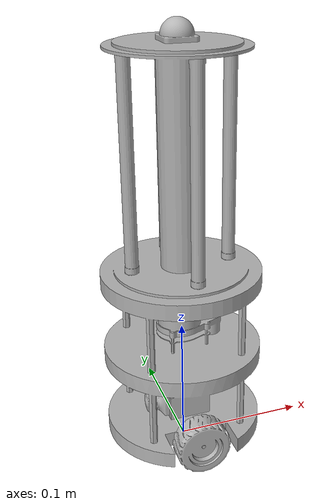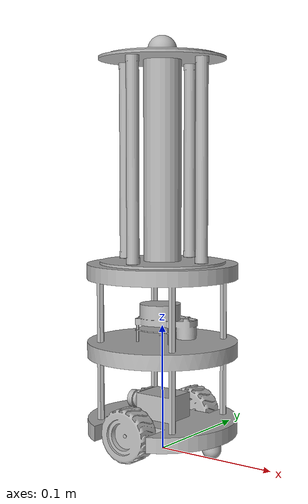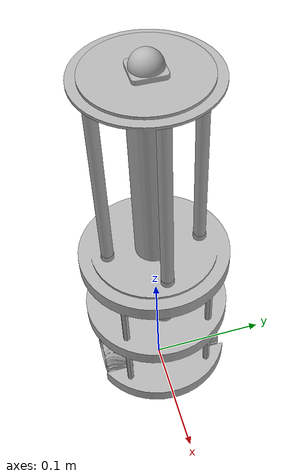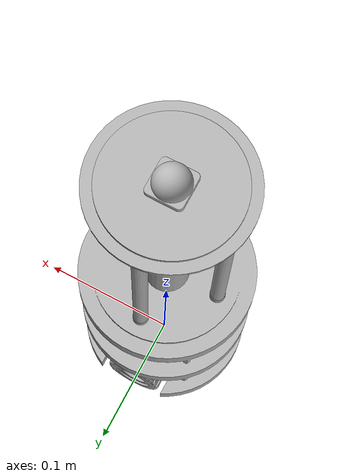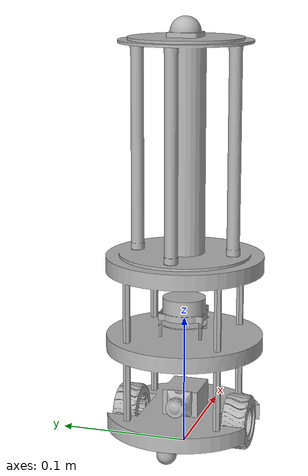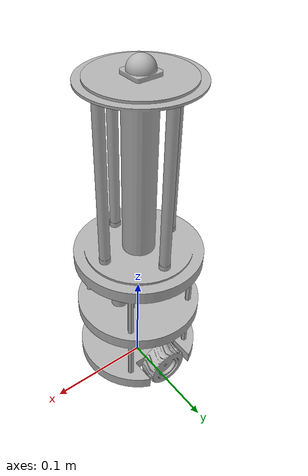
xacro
<?xml version="1.0" ?>
<robot name="jr_final_robot" xmlns:xacro="http://www.ros.org/wiki/xacro">

<xacro:include filename="$(find jr_final_robot_description)/urdf/materials.xacro" />
<xacro:include filename="$(find jr_final_robot_description)/urdf/jr_final_robot.trans" />
<xacro:include filename="$(find jr_final_robot_description)/urdf/jr_final_robot.gazebo" />
<link name="base_link">
  <inertial>
    <origin rpy="0 0 0" xyz="4.2796380229419214e-05 -2.944027739163392e-05 0.1230532923929818"/>
    <mass value="4.246440309681808"/>
    <inertia ixx="0.030754" ixy="0.0" ixz="1.6e-05" iyy="0.031238" iyz="-1.1e-05" izz="0.005746"/>
  </inertial>
  <visual>
    <origin rpy="0 0 0" xyz="0 0 0"/>
    <geometry>
      <mesh filename="package://jr_final_robot_description/meshes/base_link.stl" scale="0.001 0.001 0.001"/>
    </geometry>
    <material name="silver"/>
  </visual>
  <collision>
    <origin rpy="0 0 0" xyz="0 0 0"/>
    <geometry>
      <mesh filename="package://jr_final_robot_description/meshes/base_link.stl" scale="0.001 0.001 0.001"/>
    </geometry>
  </collision>
</link>

<link name="CW2_1">
  <inertial>
    <origin rpy="0 0 0" xyz="0.023079652489143062 -0.05471366901912194 -0.005886512749468751"/>
    <mass value="0.01595290932015856"/>
    <inertia ixx="0.0" ixy="0.0" ixz="0.0" iyy="0.0" iyz="-0.0" izz="0.0"/>
  </inertial>
  <visual>
    <origin rpy="0 0 0" xyz="-0.02442 -0.054757 -0.014001"/>
    <geometry>
      <mesh filename="package://jr_final_robot_description/meshes/CW2_1.stl" scale="0.001 0.001 0.001"/>
    </geometry>
    <material name="silver"/>
  </visual>
  <collision>
    <origin rpy="0 0 0" xyz="-0.02442 -0.054757 -0.014001"/>
    <geometry>
      <mesh filename="package://jr_final_robot_description/meshes/CW2_1.stl" scale="0.001 0.001 0.001"/>
    </geometry>
  </collision>
</link>

<link name="CW1_1">
  <inertial>
    <origin rpy="0 0 0" xyz="-0.07192034751085692 -0.05471366901913618 -0.005886512749468751"/>
    <mass value="0.01595290932015856"/>
    <inertia ixx="0.0" ixy="-0.0" ixz="-0.0" iyy="0.0" iyz="0.0" izz="0.0"/>
  </inertial>
  <visual>
    <origin rpy="0 0 0" xyz="-0.02442 -0.054757 -0.014001"/>
    <geometry>
      <mesh filename="package://jr_final_robot_description/meshes/CW1_1.stl" scale="0.001 0.001 0.001"/>
    </geometry>
    <material name="silver"/>
  </visual>
  <collision>
    <origin rpy="0 0 0" xyz="-0.02442 -0.054757 -0.014001"/>
    <geometry>
      <mesh filename="package://jr_final_robot_description/meshes/CW1_1.stl" scale="0.001 0.001 0.001"/>
    </geometry>
  </collision>
</link>

<link name="Lidar_1">
  <inertial>
    <origin rpy="0 0 0" xyz="-0.033866912602736346 -0.03783644397945601 0.018849927927141533"/>
    <mass value="0.14394520677893116"/>
    <inertia ixx="1.5e-05" ixy="-0.0" ixz="5e-06" iyy="2.7e-05" iyz="0.0" izz="3.1e-05"/>
  </inertial>
  <visual>
    <origin rpy="0 0 0" xyz="-0.035863 -0.037714 -0.088001"/>
    <geometry>
      <mesh filename="package://jr_final_robot_description/meshes/Lidar_1.stl" scale="0.001 0.001 0.001"/>
    </geometry>
    <material name="silver"/>
  </visual>
  <collision>
    <origin rpy="0 0 0" xyz="-0.035863 -0.037714 -0.088001"/>
    <geometry>
      <mesh filename="package://jr_final_robot_description/meshes/Lidar_1.stl" scale="0.001 0.001 0.001"/>
    </geometry>
  </collision>
</link>

<link name="L1_1">
  <inertial>
    <origin rpy="0 0 0" xyz="-0.037375347510832026 -2.2959229185381957e-07 -0.08032464318424948"/>
    <mass value="0.093551294700314"/>
    <inertia ixx="0.000198" ixy="-0.0" ixz="0.0" iyy="0.000198" iyz="-0.0" izz="1e-06"/>
  </inertial>
  <visual>
    <origin rpy="0 0 0" xyz="0.0 0.0 -0.311"/>
    <geometry>
      <mesh filename="package://jr_final_robot_description/meshes/L1_1.stl" scale="0.001 0.001 0.001"/>
    </geometry>
    <material name="silver"/>
  </visual>
  <collision>
    <origin rpy="0 0 0" xyz="0.0 0.0 -0.311"/>
    <geometry>
      <mesh filename="package://jr_final_robot_description/meshes/L1_1.stl" scale="0.001 0.001 0.001"/>
    </geometry>
  </collision>
</link>

<link name="L2_1">
  <inertial>
    <origin rpy="0 0 0" xyz="0.03737465248911375 -2.2959229245646252e-07 -0.08032464318425164"/>
    <mass value="0.09355129470031384"/>
    <inertia ixx="0.000198" ixy="-0.0" ixz="0.0" iyy="0.000198" iyz="-0.0" izz="1e-06"/>
  </inertial>
  <visual>
    <origin rpy="0 0 0" xyz="0.0 0.0 -0.311"/>
    <geometry>
      <mesh filename="package://jr_final_robot_description/meshes/L2_1.stl" scale="0.001 0.001 0.001"/>
    </geometry>
    <material name="silver"/>
  </visual>
  <collision>
    <origin rpy="0 0 0" xyz="0.0 0.0 -0.311"/>
    <geometry>
      <mesh filename="package://jr_final_robot_description/meshes/L2_1.stl" scale="0.001 0.001 0.001"/>
    </geometry>
  </collision>
</link>

<link name="L3_1">
  <inertial>
    <origin rpy="0 0 0" xyz="-3.47510850648991e-07 -0.03737522959227395 -0.0803246431842464"/>
    <mass value="0.093551294700314"/>
    <inertia ixx="0.000198" ixy="0.0" ixz="0.0" iyy="0.000198" iyz="-0.0" izz="1e-06"/>
  </inertial>
  <visual>
    <origin rpy="0 0 0" xyz="0.0 0.0 -0.311"/>
    <geometry>
      <mesh filename="package://jr_final_robot_description/meshes/L3_1.stl" scale="0.001 0.001 0.001"/>
    </geometry>
    <material name="silver"/>
  </visual>
  <collision>
    <origin rpy="0 0 0" xyz="0.0 0.0 -0.311"/>
    <geometry>
      <mesh filename="package://jr_final_robot_description/meshes/L3_1.stl" scale="0.001 0.001 0.001"/>
    </geometry>
  </collision>
</link>

<link name="L4_1">
  <inertial>
    <origin rpy="0 0 0" xyz="-3.475108499206847e-07 0.03737477040772681 -0.08032464318425606"/>
    <mass value="0.09355129470031462"/>
    <inertia ixx="0.000198" ixy="-0.0" ixz="0.0" iyy="0.000198" iyz="0.0" izz="1e-06"/>
  </inertial>
  <visual>
    <origin rpy="0 0 0" xyz="0.0 0.0 -0.311"/>
    <geometry>
      <mesh filename="package://jr_final_robot_description/meshes/L4_1.stl" scale="0.001 0.001 0.001"/>
    </geometry>
    <material name="silver"/>
  </visual>
  <collision>
    <origin rpy="0 0 0" xyz="0.0 0.0 -0.311"/>
    <geometry>
      <mesh filename="package://jr_final_robot_description/meshes/L4_1.stl" scale="0.001 0.001 0.001"/>
    </geometry>
  </collision>
</link>

<link name="Top_plate_1">
  <inertial>
    <origin rpy="0 0 0" xyz="0.0005796524891431269 -0.03771422959228623 0.0009993568157066757"/>
    <mass value="0.09119823561885385"/>
    <inertia ixx="4.2e-05" ixy="0.0" ixz="-0.0" iyy="4.2e-05" iyz="0.0" izz="8.4e-05"/>
  </inertial>
  <visual>
    <origin rpy="0 0 0" xyz="0.00058 -0.037714 -0.311001"/>
    <geometry>
      <mesh filename="package://jr_final_robot_description/meshes/Top_plate_1.stl" scale="0.001 0.001 0.001"/>
    </geometry>
    <material name="silver"/>
  </visual>
  <collision>
    <origin rpy="0 0 0" xyz="0.00058 -0.037714 -0.311001"/>
    <geometry>
      <mesh filename="package://jr_final_robot_description/meshes/Top_plate_1.stl" scale="0.001 0.001 0.001"/>
    </geometry>
  </collision>
</link>

<link name="PIR_1">
  <inertial>
    <origin rpy="0 0 0" xyz="-0.0004970426568133294 0.0002397704077140726 0.006089010209649248"/>
    <mass value="0.011594460600184004"/>
    <inertia ixx="1e-06" ixy="-0.0" ixz="-0.0" iyy="1e-06" iyz="0.0" izz="1e-06"/>
  </inertial>
  <visual>
    <origin rpy="0 0 0" xyz="0.0 0.0 -0.313"/>
    <geometry>
      <mesh filename="package://jr_final_robot_description/meshes/PIR_1.stl" scale="0.001 0.001 0.001"/>
    </geometry>
    <material name="silver"/>
  </visual>
  <collision>
    <origin rpy="0 0 0" xyz="0.0 0.0 -0.313"/>
    <geometry>
      <mesh filename="package://jr_final_robot_description/meshes/PIR_1.stl" scale="0.001 0.001 0.001"/>
    </geometry>
  </collision>
</link>

<link name="Camera__1">
  <inertial>
    <origin rpy="0 0 0" xyz="-0.005378430853760528 -0.0002142023319921234 0.0009993526861105315"/>
    <mass value="0.022908274960213946"/>
    <inertia ixx="1e-06" ixy="0.0" ixz="-0.0" iyy="1e-06" iyz="0.0" izz="1e-06"/>
  </inertial>
  <visual>
    <origin rpy="0 0 0" xyz="0.01549 0.000669 -0.036001"/>
    <geometry>
      <mesh filename="package://jr_final_robot_description/meshes/Camera__1.stl" scale="0.001 0.001 0.001"/>
    </geometry>
    <material name="silver"/>
  </visual>
  <collision>
    <origin rpy="0 0 0" xyz="0.01549 0.000669 -0.036001"/>
    <geometry>
      <mesh filename="package://jr_final_robot_description/meshes/Camera__1.stl" scale="0.001 0.001 0.001"/>
    </geometry>
  </collision>
</link>

<link name="Wheel_L_1">
  <inertial>
    <origin rpy="0 0 0" xyz="0.0005796511577487066 -0.004709299745277888 -3.436688253873055e-07"/>
    <mass value="0.13328483894539417"/>
    <inertia ixx="2.1e-05" ixy="0.0" ixz="-0.0" iyy="3.4e-05" iyz="0.0" izz="2.1e-05"/>
  </inertial>
  <visual>
    <origin rpy="0 0 0" xyz="0.00058 -0.048114 -0.021018"/>
    <geometry>
      <mesh filename="package://jr_final_robot_description/meshes/Wheel_L_1.stl" scale="0.001 0.001 0.001"/>
    </geometry>
    <material name="silver"/>
  </visual>
  <collision>
    <origin rpy="0 0 0" xyz="0.00058 -0.048114 -0.021018"/>
    <geometry>
      <mesh filename="package://jr_final_robot_description/meshes/Wheel_L_1.stl" scale="0.001 0.001 0.001"/>
    </geometry>
  </collision>
</link>

<link name="Wheel_R_1">
  <inertial>
    <origin rpy="0 0 0" xyz="0.0005796538662169424 0.004280840378584727 -3.436038342151393e-07"/>
    <mass value="0.13328484508120644"/>
    <inertia ixx="2.1e-05" ixy="0.0" ixz="0.0" iyy="3.4e-05" iyz="-0.0" izz="2.1e-05"/>
  </inertial>
  <visual>
    <origin rpy="0 0 0" xyz="0.00058 0.048186 -0.021018"/>
    <geometry>
      <mesh filename="package://jr_final_robot_description/meshes/Wheel_R_1.stl" scale="0.001 0.001 0.001"/>
    </geometry>
    <material name="silver"/>
  </visual>
  <collision>
    <origin rpy="0 0 0" xyz="0.00058 0.048186 -0.021018"/>
    <geometry>
      <mesh filename="package://jr_final_robot_description/meshes/Wheel_R_1.stl" scale="0.001 0.001 0.001"/>
    </geometry>
  </collision>
</link>

<joint name="CW1" type="fixed">
  <origin rpy="0 0 0" xyz="0.02442 0.054757 0.014001"/>
  <parent link="base_link"/>
  <child link="CW2_1"/>
</joint>

<joint name="CW2" type="fixed">
  <origin rpy="0 0 0" xyz="0.02442 0.054757 0.014001"/>
  <parent link="base_link"/>
  <child link="CW1_1"/>
</joint>

<joint name="Lidar" type="fixed">
  <origin rpy="0 0 0" xyz="0.035863 0.037714 0.088001"/>
  <parent link="base_link"/>
  <child link="Lidar_1"/>
</joint>

<joint name="Rigid7" type="fixed">
  <origin rpy="0 0 0" xyz="0.00058 -0.037714 -1e-06"/>
  <parent link="Top_plate_1"/>
  <child link="L1_1"/>
</joint>

<joint name="Rigid8" type="fixed">
  <origin rpy="0 0 0" xyz="0.00058 -0.037714 -1e-06"/>
  <parent link="Top_plate_1"/>
  <child link="L2_1"/>
</joint>

<joint name="Rigid9" type="fixed">
  <origin rpy="0 0 0" xyz="0.00058 -0.037714 -1e-06"/>
  <parent link="Top_plate_1"/>
  <child link="L3_1"/>
</joint>

<joint name="Rigid10" type="fixed">
  <origin rpy="0 0 0" xyz="0.00058 -0.037714 -1e-06"/>
  <parent link="Top_plate_1"/>
  <child link="L4_1"/>
</joint>

<joint name="TP and BL" type="fixed">
  <origin rpy="0 0 0" xyz="-0.00058 0.037714 0.311001"/>
  <parent link="base_link"/>
  <child link="Top_plate_1"/>
</joint>

<joint name="PIR" type="fixed">
  <origin rpy="0 0 0" xyz="0.00058 -0.037714 0.001999"/>
  <parent link="Top_plate_1"/>
  <child link="PIR_1"/>
</joint>

<joint name="camera_joint" type="fixed">
  <origin rpy="0 0 0" xyz="-0.01549 -0.000669 0.036001"/>
  <parent link="base_link"/>
  <child link="Camera__1"/>
</joint>

<joint name="Rev17" type="continuous">
  <origin rpy="0 0 0" xyz="-0.00058 0.048114 0.021018"/>
  <parent link="base_link"/>
  <child link="Wheel_L_1"/>
  <axis xyz="0.0 1.0 -0.0"/>
</joint>

<joint name="Rev18" type="continuous">
  <origin rpy="0 0 0" xyz="-0.00058 -0.048186 0.021018"/>
  <parent link="base_link"/>
  <child link="Wheel_R_1"/>
  <axis xyz="0.0 1.0 0.0"/>
</joint>

</robot>

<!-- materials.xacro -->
<robot name="jr_final_robot" xmlns:xacro="http://www.ros.org/wiki/xacro" >

<material name="silver">
  <color rgba="0.700 0.700 0.700 1.000"/>
</material>

</robot>

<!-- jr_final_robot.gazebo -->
<robot name="jr_final_robot" xmlns:xacro="http://www.ros.org/wiki/xacro" >

<xacro:property name="body_color" value="Gazebo/Silver" />

<gazebo>
  <plugin filename="libgazebo_ros_control.so" name="control"/>
</gazebo>

<gazebo reference="Lidar_1">
    <sensor type="ray" name="head_hokuyo_sensor">
      <pose>0 0 0 0 0 0</pose>
      <visualize>false</visualize>
      <update_rate>40</update_rate>
      <ray>
        <scan>
          <horizontal>
            <samples>720</samples>
            <resolution>1</resolution>
            <min_angle>-1.570796</min_angle>
            <max_angle>1.570796</max_angle>
          </horizontal>
        </scan>
        <range>
          <min>0.10</min>
          <max>30.0</max>
          <resolution>0.01</resolution>
        </range>
        <noise>
          <type>gaussian</type>
          <mean>0.0</mean>
          <stddev>0.01</stddev>
        </noise>
      </ray>
      <plugin name="gazebo_ros_head_hokuyo_controller" filename="libgazebo_ros_laser.so">
        <topicName>/scan</topicName>
        <frameName>Lidar_1</frameName>
      </plugin>
    </sensor>
  </gazebo>

  <gazebo>
  <plugin name="differential_drive_controller" filename="libgazebo_ros_diff_drive.so">

    <!-- Plugin update rate in Hz -->
    <updateRate>10</updateRate>

    <!-- Name of left joint, defaults to `left_joint` -->
    <leftJoint>Rev17</leftJoint>

    <!-- Name of right joint, defaults to `right_joint` -->
    <rightJoint>Rev18</rightJoint>

    <!-- Wheel acceleration, in rad/s^2, defaults to 0.0 rad/s^2 -->
    <wheelAcceleration>1.0</wheelAcceleration>

    <!-- Maximum torque which the wheels can produce, in Nm, defaults to 5 Nm -->
    <wheelTorque>20</wheelTorque>

    <!-- Topic to receive geometry_msgs/Twist message commands, defaults to `cmd_vel` -->
    <commandTopic>cmd_vel</commandTopic>

    <!-- Topic to publish nav_msgs/Odometry messages, defaults to `odom` -->
    <odometryTopic>odom</odometryTopic>

    <!-- Odometry frame, defaults to `odom` -->
    <odometryFrame>odom</odometryFrame>

    <!-- Robot frame to calculate odometry from, defaults to `base_footprint` -->
    <robotBaseFrame>base_link</robotBaseFrame>

    <!-- Odometry source, 0 for ENCODER, 1 for WORLD, defaults to WORLD -->
    <odometrySource>1</odometrySource>

    <!-- Set to true to publish transforms for the wheel links, defaults to false -->
    <publishWheelTF>true</publishWheelTF>

    <!-- Set to true to publish transforms for the odometry, defaults to true -->
    <publishOdom>true</publishOdom>

    <!-- Set to true to publish sensor_msgs/JointState on /joint_states for the wheel joints, defaults to false -->
    <publishWheelJointState>true</publishWheelJointState>

    <!-- Set to true to swap right and left wheels, defaults to true -->
    <legacyMode>false</legacyMode>
  </plugin>
</gazebo>

<gazebo reference="base_link">
  <material>${body_color}</material>
  <mu1>0.2</mu1>
  <mu2>0.2</mu2>
  <selfCollide>true</selfCollide>
  <gravity>true</gravity>
</gazebo>

<gazebo reference="CW2_1">
  <material>${body_color}</material>
  <mu1>0.2</mu1>
  <mu2>0.2</mu2>
  <selfCollide>true</selfCollide>
</gazebo>

<gazebo reference="CW1_1">
  <material>${body_color}</material>
  <mu1>0.2</mu1>
  <mu2>0.2</mu2>
  <selfCollide>true</selfCollide>
</gazebo>

<gazebo reference="Lidar_1">
  <material>${body_color}</material>
  <mu1>0.2</mu1>
  <mu2>0.2</mu2>
  <selfCollide>true</selfCollide>
</gazebo>

<gazebo reference="L1_1">
  <material>${body_color}</material>
  <mu1>0.2</mu1>
  <mu2>0.2</mu2>
  <selfCollide>true</selfCollide>
</gazebo>

<gazebo reference="L2_1">
  <material>${body_color}</material>
  <mu1>0.2</mu1>
  <mu2>0.2</mu2>
  <selfCollide>true</selfCollide>
</gazebo>

<gazebo reference="L3_1">
  <material>${body_color}</material>
  <mu1>0.2</mu1>
  <mu2>0.2</mu2>
  <selfCollide>true</selfCollide>
</gazebo>

<gazebo reference="L4_1">
  <material>${body_color}</material>
  <mu1>0.2</mu1>
  <mu2>0.2</mu2>
  <selfCollide>true</selfCollide>
</gazebo>

<gazebo reference="Top_plate_1">
  <material>${body_color}</material>
  <mu1>0.2</mu1>
  <mu2>0.2</mu2>
  <selfCollide>true</selfCollide>
</gazebo>

<gazebo reference="PIR_1">
  <material>${body_color}</material>
  <mu1>0.2</mu1>
  <mu2>0.2</mu2>
  <selfCollide>true</selfCollide>
</gazebo>

<gazebo reference="Camera__1">
  <material>${body_color}</material>
  <mu1>0.2</mu1>
  <mu2>0.2</mu2>
  <selfCollide>true</selfCollide>
</gazebo>

<gazebo reference="Wheel_L_1">
  <material>${body_color}</material>
  <mu1>0.2</mu1>
  <mu2>0.2</mu2>
  <selfCollide>true</selfCollide>
</gazebo>

<gazebo reference="Wheel_R_1">
  <material>${body_color}</material>
  <mu1>0.2</mu1>
  <mu2>0.2</mu2>
  <selfCollide>true</selfCollide>
</gazebo>

</robot>
